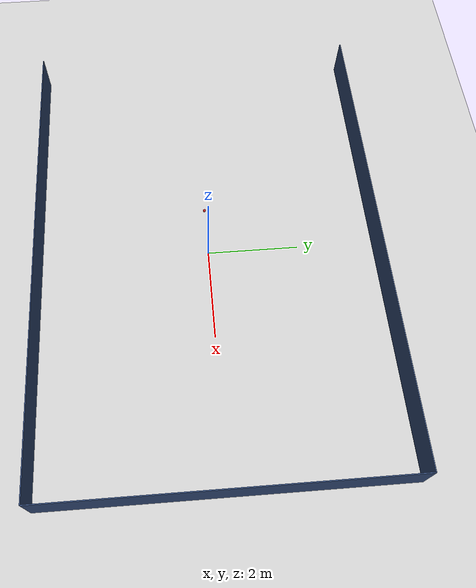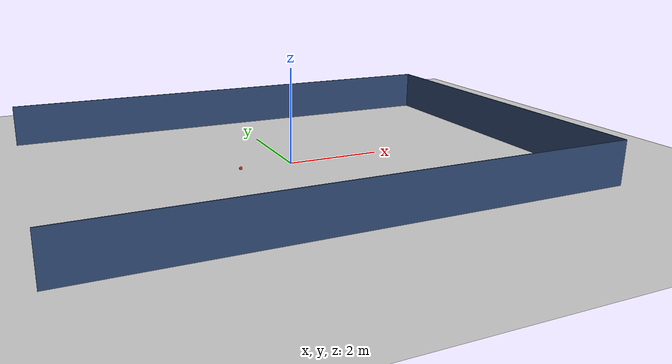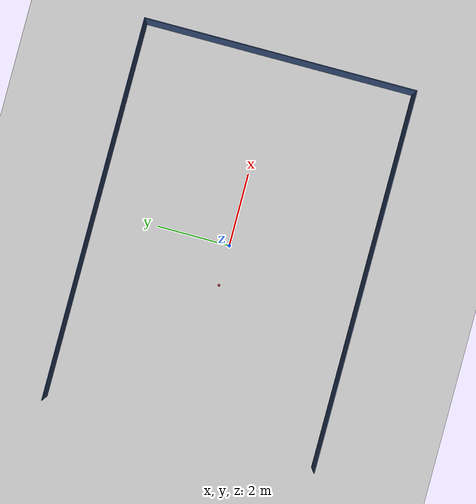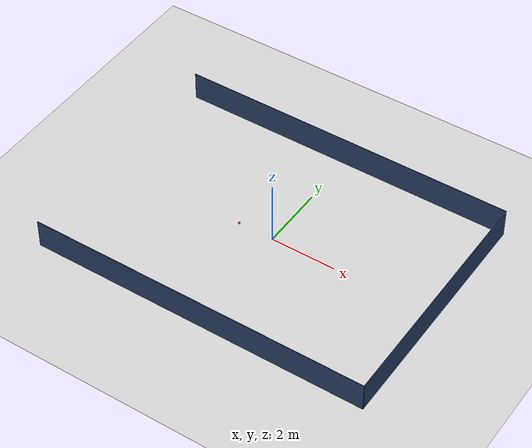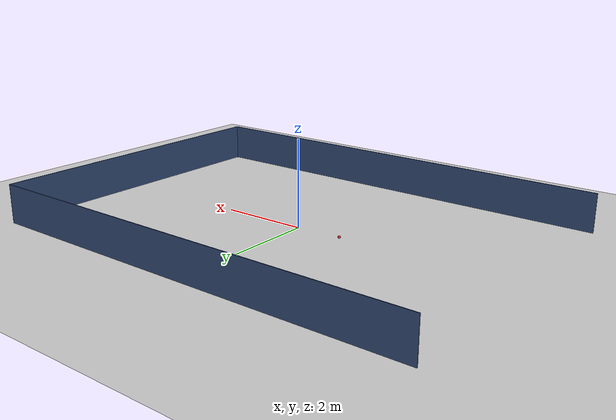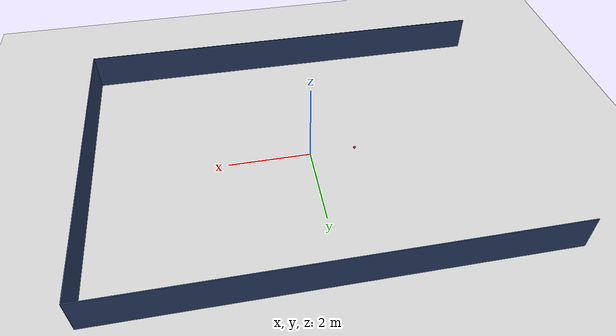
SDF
<sdf version="1.6">
 <world name="default">
  <model name="ground_plane">
   <static>1</static>
   <link name="link">
    <collision name="collision">
     <geometry><plane><normal>0 0 1</normal><size>100 100</size></plane></geometry>
     <surface><friction><ode><mu>100</mu><mu2>50</mu2></ode></friction></surface>
    </collision>
    <visual name="visual">
     <cast_shadows>0</cast_shadows>
     <geometry><plane><normal>0 0 1</normal><size>100 100</size></plane></geometry>
     <material>
      <script><uri>file://media/materials/scripts/gazebo.material</uri><name>Gazebo/Grey</name></script>
     </material>
    </visual>
   </link>
  </model>
  <model name="wall01_0">
   <link name="link">
    <inertial>
     <mass>50</mass>
     <inertia><ixx>1</ixx><ixy>0</ixy><ixz>0</ixz><iyy>1</iyy><iyz>0</iyz><izz>1</izz></inertia>
    </inertial>
    <velocity_decay><linear>0</linear><angular>0</angular></velocity_decay>
    <visual name="wall">
     <pose>0 0 0.45 0 -0 0</pose>
     <geometry><box><size>0.02 10.4 0.9</size></box></geometry>
     <material>
      <ambient>0.392 0.584 0.929 1</ambient>
      <diffuse>0.196 0.292 0.465 1</diffuse>
      <specular>0 0 0 1</specular>
      <shader type="pixel"><normal_map>__default__</normal_map></shader>
      <script><name>ModelPreview_18::link::wall_MATERIAL_</name><uri>__default__</uri></script>
      <emissive>0 0 0 1</emissive>
     </material>
    </visual>
    <collision name="collision_wall">
     <pose>0 0 0.45 0 -0 0</pose>
     <geometry><box><size>0.02 10.4 0.9</size></box></geometry>
     <surface>
      <friction>
       <ode><mu>1</mu><mu2>1</mu2><fdir1>0 0 0</fdir1><slip1>0</slip1><slip2>0</slip2></ode>
       <torsional>
        <coefficient>1</coefficient>
        <patch_radius>0</patch_radius>
        <surface_radius>0</surface_radius>
        <use_patch_radius>1</use_patch_radius>
        <ode><slip>0</slip></ode>
       </torsional>
      </friction>
      <bounce><restitution_coefficient>0</restitution_coefficient><threshold>1e+06</threshold></bounce>
      <contact>
       <collide_without_contact>0</collide_without_contact>
       <collide_without_contact_bitmask>1</collide_without_contact_bitmask>
       <collide_bitmask>1</collide_bitmask>
       <ode>
        <soft_cfm>0</soft_cfm>
        <soft_erp>0.2</soft_erp>
        <kp>1e+13</kp>
        <kd>1</kd>
        <max_vel>0.01</max_vel>
        <min_depth>0</min_depth>
       </ode>
       <bullet>
        <split_impulse>1</split_impulse>
        <split_impulse_penetration_threshold>-0.01</split_impulse_penetration_threshold>
        <soft_cfm>0</soft_cfm>
        <soft_erp>0.2</soft_erp>
        <kp>1e+13</kp>
        <kd>1</kd>
       </bullet>
      </contact>
     </surface>
    </collision>
   </link>
   <static>1</static>
   <pose>0 3.7 0 0 -0 1.57</pose>
  </model>
  <model name="wall01_0_clone">
   <link name="link">
    <inertial>
     <mass>50</mass>
     <inertia><ixx>1</ixx><ixy>0</ixy><ixz>0</ixz><iyy>1</iyy><iyz>0</iyz><izz>1</izz></inertia>
    </inertial>
    <velocity_decay><linear>0</linear><angular>0</angular></velocity_decay>
    <visual name="wall">
     <pose>0 0 0.45 0 -0 0</pose>
     <geometry><box><size>0.02 10.4 0.9</size></box></geometry>
     <material>
      <ambient>0.392 0.584 0.929 1</ambient>
      <diffuse>0.196 0.292 0.465 1</diffuse>
      <specular>0 0 0 1</specular>
      <shader type="pixel"><normal_map>__default__</normal_map></shader>
      <script><name>ModelPreview_18::link::wall_MATERIAL_</name><uri>__default__</uri></script>
      <emissive>0 0 0 1</emissive>
     </material>
    </visual>
    <collision name="collision_wall">
     <pose>0 0 0.45 0 -0 0</pose>
     <geometry><box><size>0.02 10.4 0.9</size></box></geometry>
     <surface>
      <friction>
       <ode><mu>1</mu><mu2>1</mu2><fdir1>0 0 0</fdir1><slip1>0</slip1><slip2>0</slip2></ode>
       <torsional>
        <coefficient>1</coefficient>
        <patch_radius>0</patch_radius>
        <surface_radius>0</surface_radius>
        <use_patch_radius>1</use_patch_radius>
        <ode><slip>0</slip></ode>
       </torsional>
      </friction>
      <bounce><restitution_coefficient>0</restitution_coefficient><threshold>1e+06</threshold></bounce>
      <contact>
       <collide_without_contact>0</collide_without_contact>
       <collide_without_contact_bitmask>1</collide_without_contact_bitmask>
       <collide_bitmask>1</collide_bitmask>
       <ode>
        <soft_cfm>0</soft_cfm>
        <soft_erp>0.2</soft_erp>
        <kp>1e+13</kp>
        <kd>1</kd>
        <max_vel>0.01</max_vel>
        <min_depth>0</min_depth>
       </ode>
       <bullet>
        <split_impulse>1</split_impulse>
        <split_impulse_penetration_threshold>-0.01</split_impulse_penetration_threshold>
        <soft_cfm>0</soft_cfm>
        <soft_erp>0.2</soft_erp>
        <kp>1e+13</kp>
        <kd>1</kd>
       </bullet>
      </contact>
     </surface>
    </collision>
   </link>
   <static>1</static>
   <pose>0 -3.7 0 0 -0 1.57</pose>
  </model>
  <model name="wall01">
   <link name="link">
    <inertial>
     <mass>50</mass>
     <inertia><ixx>1</ixx><ixy>0</ixy><ixz>0</ixz><iyy>1</iyy><iyz>0</iyz><izz>1</izz></inertia>
    </inertial>
    <velocity_decay><linear>0</linear><angular>0</angular></velocity_decay>
    <visual name="wall">
     <pose>0 0 0.45 0 -0 0</pose>
     <geometry><box><size>0.02 7.4 0.9</size></box></geometry>
     <material>
      <ambient>0.392 0.584 0.929 1</ambient>
      <diffuse>0.196 0.292 0.465 1</diffuse>
      <specular>0 0 0 1</specular>
      <shader type="pixel"><normal_map>__default__</normal_map></shader>
      <script><name>ModelPreview_1::link::wall_MATERIAL_</name><uri>__default__</uri></script>
      <emissive>0 0 0 1</emissive>
     </material>
    </visual>
    <collision name="collision_wall">
     <pose>0 0 0.45 0 -0 0</pose>
     <geometry><box><size>0.02 7.4 0.9</size></box></geometry>
     <surface>
      <friction>
       <ode><mu>1</mu><mu2>1</mu2><fdir1>0 0 0</fdir1><slip1>0</slip1><slip2>0</slip2></ode>
       <torsional>
        <coefficient>1</coefficient>
        <patch_radius>0</patch_radius>
        <surface_radius>0</surface_radius>
        <use_patch_radius>1</use_patch_radius>
        <ode><slip>0</slip></ode>
       </torsional>
      </friction>
      <bounce><restitution_coefficient>0</restitution_coefficient><threshold>1e+06</threshold></bounce>
      <contact>
       <collide_without_contact>0</collide_without_contact>
       <collide_without_contact_bitmask>1</collide_without_contact_bitmask>
       <collide_bitmask>1</collide_bitmask>
       <ode>
        <soft_cfm>0</soft_cfm>
        <soft_erp>0.2</soft_erp>
        <kp>1e+13</kp>
        <kd>1</kd>
        <max_vel>0.01</max_vel>
        <min_depth>0</min_depth>
       </ode>
       <bullet>
        <split_impulse>1</split_impulse>
        <split_impulse_penetration_threshold>-0.01</split_impulse_penetration_threshold>
        <soft_cfm>0</soft_cfm>
        <soft_erp>0.2</soft_erp>
        <kp>1e+13</kp>
        <kd>1</kd>
       </bullet>
      </contact>
     </surface>
    </collision>
   </link>
   <static>1</static>
   <pose>5.2 0 0 0 -0 0</pose>
  </model>
  <model name="RoboCup SPL Ball">
   <static>0</static>
   <link name="ball">
    <inertial>
     <mass>0.0056</mass>
     <inertia>
      <ixx>2.37e-06</ixx>
      <iyy>2.37e-06</iyy>
      <izz>2.37e-06</izz>
      <ixy>0</ixy>
      <ixz>0</ixz>
      <iyz>0</iyz>
     </inertia>
    </inertial>
    <collision name="collision"><geometry><sphere><radius>0.0325</radius></sphere></geometry></collision>
    <visual name="visual">
     <geometry><sphere><radius>0.0325</radius></sphere></geometry>
     <material>
      <script><uri>file://media/materials/scripts/gazebo.material</uri><name>Gazebo/RedBright</name></script>
     </material>
    </visual>
   </link>
   <pose>-1.10405 -0.006855 0.0425 0 -0 0</pose>
  </model>
 </world>
</sdf>
